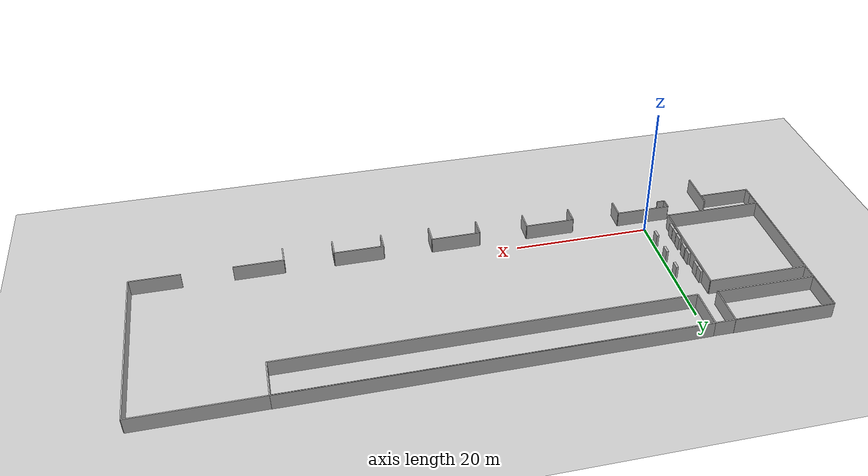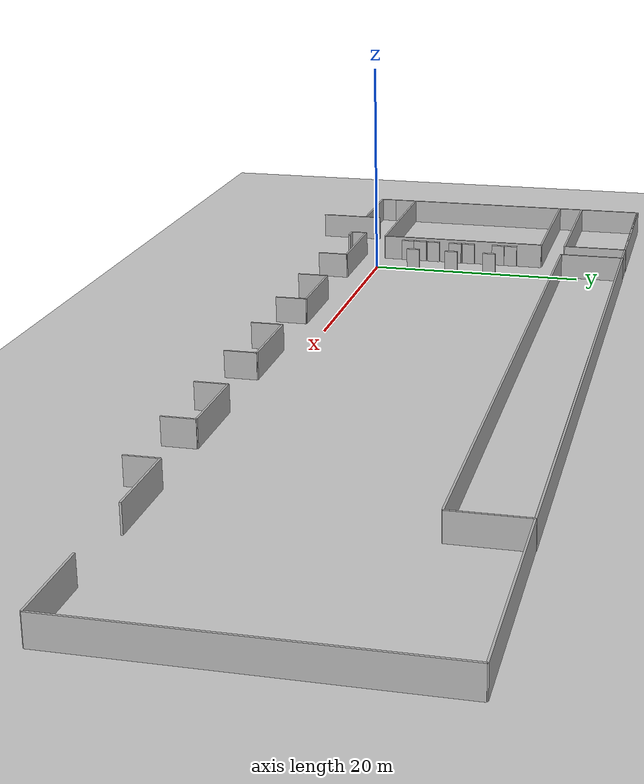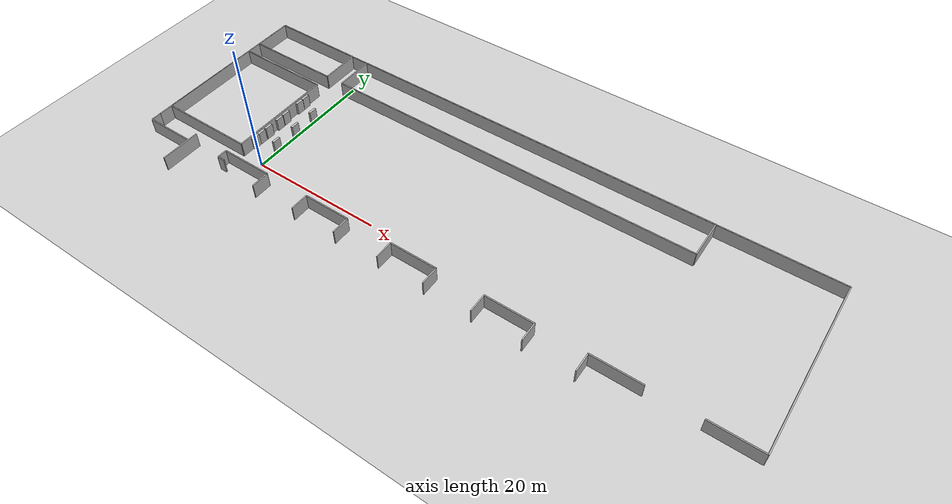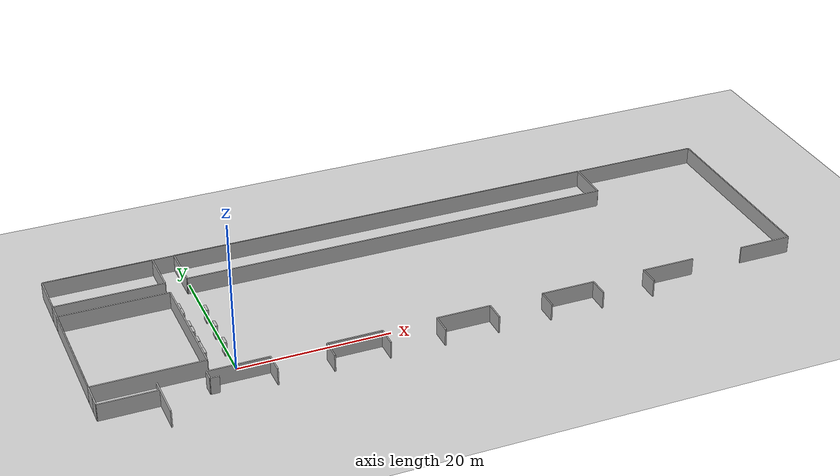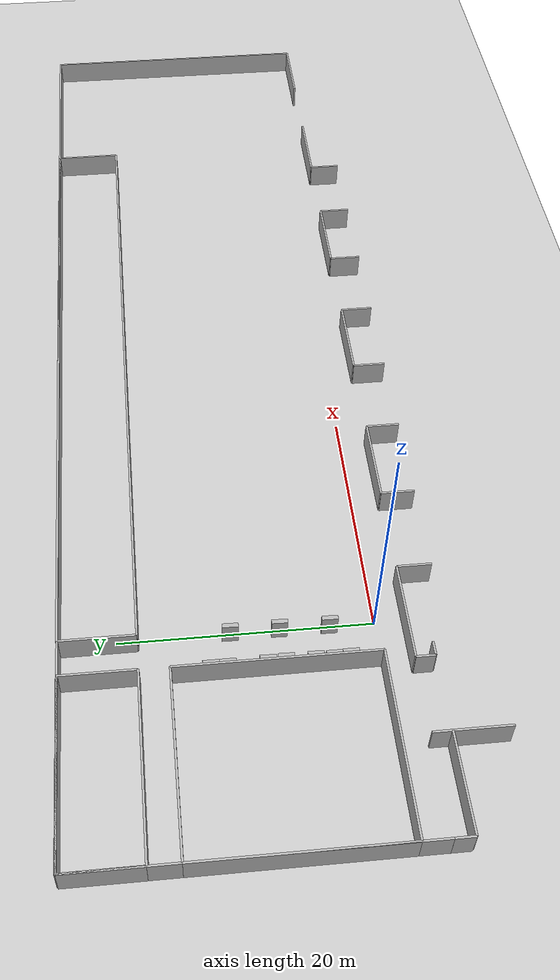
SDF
<sdf version="1.6">
 <world name="default">
  <model name="ground_plane">
   <static>1</static>
   <link name="link">
    <collision name="collision">
     <geometry><plane><normal>0 0 1</normal><size>100 100</size></plane></geometry>
     <surface><friction><ode><mu>100</mu><mu2>50</mu2></ode></friction></surface>
    </collision>
    <visual name="visual">
     <cast_shadows>0</cast_shadows>
     <geometry><plane><normal>0 0 1</normal><size>100 100</size></plane></geometry>
     <material>
      <script><uri>file://media/materials/scripts/gazebo.material</uri><name>Gazebo/Grey</name></script>
     </material>
    </visual>
   </link>
  </model>
  <model name="model_2">
   <pose>-17.962 0 1 0 -0 0</pose>
   <link name="Wall_0">
    <pose>7.219 0 0 0 -0 0</pose>
    <collision name="Wall_0_Collision"><geometry><box><size>14.438 0.169 2.5</size></box></geometry></collision>
    <visual name="Wall_0_Visual"><geometry><box><size>14.438 0.169 2.5</size></box></geometry></visual>
   </link>
   <link name="Wall_1">
    <pose>7.219 16 0 0 -0 0</pose>
    <collision name="Wall_1_Collision"><geometry><box><size>14.438 0.169 2.5</size></box></geometry></collision>
    <visual name="Wall_1_Visual"><geometry><box><size>14.438 0.169 2.5</size></box></geometry></visual>
   </link>
   <link name="Wall_2">
    <pose>0 8 0 0 -0 1.5707</pose>
    <collision name="Wall_2_Collision"><geometry><box><size>16 0.169 2.5</size></box></geometry></collision>
    <visual name="Wall_2_Visual"><geometry><box><size>16 0.169 2.5</size></box></geometry></visual>
   </link>
   <link name="Wall_3">
    <pose>14.438 8 0 0 -0 1.5707</pose>
    <collision name="Wall_3_Collision"><geometry><box><size>16 0.169 2.5</size></box></geometry></collision>
    <visual name="Wall_3_Visual"><geometry><box><size>16 0.169 2.5</size></box></geometry></visual>
   </link>
   <static>1</static>
  </model>
  <model name="model_3">
   <pose>-17.962 18.362 1 0 -0 0</pose>
   <link name="Wall_0">
    <pose>7.219 0 0 0 -0 0</pose>
    <collision name="Wall_0_Collision"><geometry><box><size>14.438 0.169 2.5</size></box></geometry></collision>
    <visual name="Wall_0_Visual"><geometry><box><size>14.438 0.169 2.5</size></box></geometry></visual>
   </link>
   <link name="Wall_1">
    <pose>7.219 6 0 0 -0 0</pose>
    <collision name="Wall_1_Collision"><geometry><box><size>14.438 0.169 2.5</size></box></geometry></collision>
    <visual name="Wall_1_Visual"><geometry><box><size>14.438 0.169 2.5</size></box></geometry></visual>
   </link>
   <link name="Wall_2">
    <pose>0 3 0 0 -0 1.5707</pose>
    <collision name="Wall_2_Collision"><geometry><box><size>6 0.169 2.5</size></box></geometry></collision>
    <visual name="Wall_2_Visual"><geometry><box><size>6 0.169 2.5</size></box></geometry></visual>
   </link>
   <link name="Wall_3">
    <pose>14.438 3 0 0 -0 1.5707</pose>
    <collision name="Wall_3_Collision"><geometry><box><size>6 0.169 2.5</size></box></geometry></collision>
    <visual name="Wall_3_Visual"><geometry><box><size>6 0.169 2.5</size></box></geometry></visual>
   </link>
   <static>1</static>
  </model>
  <model name="model_4">
   <pose>-0.636 18.362 1 0 -0 0</pose>
   <link name="Wall_0">
    <pose>29.306 0 0 0 -0 0</pose>
    <collision name="Wall_0_Collision"><geometry><box><size>58.612 0.169 2.5</size></box></geometry></collision>
    <visual name="Wall_0_Visual"><geometry><box><size>58.612 0.169 2.5</size></box></geometry></visual>
   </link>
   <link name="Wall_1">
    <pose>29.306 6 0 0 -0 0</pose>
    <collision name="Wall_1_Collision"><geometry><box><size>58.612 0.169 2.5</size></box></geometry></collision>
    <visual name="Wall_1_Visual"><geometry><box><size>58.612 0.169 2.5</size></box></geometry></visual>
   </link>
   <link name="Wall_2">
    <pose>0 3 0 0 -0 1.5707</pose>
    <collision name="Wall_2_Collision"><geometry><box><size>6 0.169 2.5</size></box></geometry></collision>
    <visual name="Wall_2_Visual"><geometry><box><size>6 0.169 2.5</size></box></geometry></visual>
   </link>
   <link name="Wall_3">
    <pose>58.612 3 0 0 -0 1.5707</pose>
    <collision name="Wall_3_Collision"><geometry><box><size>6 0.169 2.5</size></box></geometry></collision>
    <visual name="Wall_3_Visual"><geometry><box><size>6 0.169 2.5</size></box></geometry></visual>
   </link>
   <static>1</static>
  </model>
  <model name="model_6">
   <pose>-17.962 -2.202 1 0 -0 0</pose>
   <link name="Wall_0">
    <pose>0 -0.755 0 0 -0 1.5707</pose>
    <collision name="Wall_0_Collision"><geometry><box><size>1.51 0.169 2.5</size></box></geometry></collision>
    <visual name="Wall_0_Visual"><geometry><box><size>1.51 0.169 2.5</size></box></geometry></visual>
   </link>
   <link name="Wall_1">
    <pose>3.809 -1.51 0 0 -0 0</pose>
    <collision name="Wall_1_Collision"><geometry><box><size>7.618 0.169 2.5</size></box></geometry></collision>
    <visual name="Wall_1_Visual"><geometry><box><size>7.618 0.169 2.5</size></box></geometry></visual>
   </link>
   <link name="Wall_2">
    <pose>7.618 -3.005 0 0 -0 1.5707</pose>
    <collision name="Wall_2_Collision"><geometry><box><size>6.01 0.169 2.5</size></box></geometry></collision>
    <visual name="Wall_2_Visual"><geometry><box><size>6.01 0.169 2.5</size></box></geometry></visual>
   </link>
   <link name="Wall_3">
    <pose>13.638 -0.755 0 0 -0 1.5707</pose>
    <collision name="Wall_3_Collision"><geometry><box><size>1.51 0.169 2.5</size></box></geometry></collision>
    <visual name="Wall_3_Visual"><geometry><box><size>1.51 0.169 2.5</size></box></geometry></visual>
   </link>
   <link name="Wall_4">
    <pose>14.214 -1.51 0 0 -0 0</pose>
    <collision name="Wall_4_Collision"><geometry><box><size>1.152 0.169 2.5</size></box></geometry></collision>
    <visual name="Wall_4_Visual"><geometry><box><size>1.152 0.169 2.5</size></box></geometry></visual>
   </link>
   <link name="Wall_5">
    <pose>17.619 0 0 0 -0 0</pose>
    <collision name="Wall_5_Collision"><geometry><box><size>7.962 0.169 2.5</size></box></geometry></collision>
    <visual name="Wall_5_Visual"><geometry><box><size>7.962 0.169 2.5</size></box></geometry></visual>
   </link>
   <link name="Wall_6">
    <pose>21.6 -1.39375 0 0 -0 1.5707</pose>
    <collision name="Wall_6_Collision"><geometry><box><size>2.7875 0.169 2.5</size></box></geometry></collision>
    <visual name="Wall_6_Visual"><geometry><box><size>2.7875 0.169 2.5</size></box></geometry></visual>
   </link>
   <link name="Wall_7">
    <pose>28.8 -1.39375 0 0 -0 1.5707</pose>
    <collision name="Wall_7_Collision"><geometry><box><size>2.7875 0.169 2.5</size></box></geometry></collision>
    <visual name="Wall_7_Visual"><geometry><box><size>2.7875 0.169 2.5</size></box></geometry></visual>
   </link>
   <link name="Wall_8">
    <pose>32.4 0 0 0 -0 0</pose>
    <collision name="Wall_8_Collision"><geometry><box><size>7.2 0.169 2.5</size></box></geometry></collision>
    <visual name="Wall_8_Visual"><geometry><box><size>7.2 0.169 2.5</size></box></geometry></visual>
   </link>
   <link name="Wall_9">
    <pose>36 -1.39375 0 0 -0 1.5707</pose>
    <collision name="Wall_9_Collision"><geometry><box><size>2.7875 0.169 2.5</size></box></geometry></collision>
    <visual name="Wall_9_Visual"><geometry><box><size>2.7875 0.169 2.5</size></box></geometry></visual>
   </link>
   <link name="Wall_10">
    <pose>43.2 -1.39375 0 0 -0 1.5707</pose>
    <collision name="Wall_10_Collision"><geometry><box><size>2.7875 0.169 2.5</size></box></geometry></collision>
    <visual name="Wall_10_Visual"><geometry><box><size>2.7875 0.169 2.5</size></box></geometry></visual>
   </link>
   <link name="Wall_11">
    <pose>46.8 0 0 0 -0 0</pose>
    <collision name="Wall_11_Collision"><geometry><box><size>7.2 0.169 2.5</size></box></geometry></collision>
    <visual name="Wall_11_Visual"><geometry><box><size>7.2 0.169 2.5</size></box></geometry></visual>
   </link>
   <link name="Wall_12">
    <pose>50.4 -1.39375 0 0 -0 1.5707</pose>
    <collision name="Wall_12_Collision"><geometry><box><size>2.7875 0.169 2.5</size></box></geometry></collision>
    <visual name="Wall_12_Visual"><geometry><box><size>2.7875 0.169 2.5</size></box></geometry></visual>
   </link>
   <link name="Wall_13">
    <pose>57.6 -1.39375 0 0 -0 1.5707</pose>
    <collision name="Wall_13_Collision"><geometry><box><size>2.7875 0.169 2.5</size></box></geometry></collision>
    <visual name="Wall_13_Visual"><geometry><box><size>2.7875 0.169 2.5</size></box></geometry></visual>
   </link>
   <link name="Wall_14">
    <pose>61.2 0 0 0 -0 0</pose>
    <collision name="Wall_14_Collision"><geometry><box><size>7.2 0.169 2.5</size></box></geometry></collision>
    <visual name="Wall_14_Visual"><geometry><box><size>7.2 0.169 2.5</size></box></geometry></visual>
   </link>
   <link name="Wall_15">
    <pose>64.8 -1.39375 0 0 -0 1.5707</pose>
    <collision name="Wall_15_Collision"><geometry><box><size>2.7875 0.169 2.5</size></box></geometry></collision>
    <visual name="Wall_15_Visual"><geometry><box><size>2.7875 0.169 2.5</size></box></geometry></visual>
   </link>
   <link name="Wall_16">
    <pose>72 -1.39375 0 0 -0 1.5707</pose>
    <collision name="Wall_16_Collision"><geometry><box><size>2.7875 0.169 2.5</size></box></geometry></collision>
    <visual name="Wall_16_Visual"><geometry><box><size>2.7875 0.169 2.5</size></box></geometry></visual>
   </link>
   <link name="Wall_17">
    <pose>75.6 0 0 0 -0 0</pose>
    <collision name="Wall_17_Collision"><geometry><box><size>7.2 0.169 2.5</size></box></geometry></collision>
    <visual name="Wall_17_Visual"><geometry><box><size>7.2 0.169 2.5</size></box></geometry></visual>
   </link>
   <link name="Wall_18">
    <pose>90 0 0 0 -0 0</pose>
    <collision name="Wall_18_Collision"><geometry><box><size>7.2 0.169 2.5</size></box></geometry></collision>
    <visual name="Wall_18_Visual"><geometry><box><size>7.2 0.169 2.5</size></box></geometry></visual>
   </link>
   <static>1</static>
  </model>
  <model name="model_7">
   <pose>-17.962 -2.202 1 0 -0 0</pose>
   <link name="Wall_0">
    <pose>0 13.27 0 0 -0 1.5707</pose>
    <collision name="Wall_0_Collision"><geometry><box><size>26.54 0.16 2.5</size></box></geometry></collision>
    <visual name="Wall_0_Visual"><geometry><box><size>26.54 0.16 2.5</size></box></geometry></visual>
   </link>
   <link name="Wall_1">
    <pose>46.8 26.54 0 0 -0 0</pose>
    <collision name="Wall_1_Collision"><geometry><box><size>93.6 0.16 2.5</size></box></geometry></collision>
    <visual name="Wall_1_Visual"><geometry><box><size>93.6 0.16 2.5</size></box></geometry></visual>
   </link>
   <link name="Wall_3">
    <pose>93.6 13.27 0 0 -0 1.5707</pose>
    <collision name="Wall_3_Collision"><geometry><box><size>26.54 0.16 2.5</size></box></geometry></collision>
    <visual name="Wall_3_Visual"><geometry><box><size>26.54 0.16 2.5</size></box></geometry></visual>
   </link>
   <static>1</static>
  </model>
  <model name="unit_box_clone_1_clone_56_clone_clone_clone_1">
   <pose>-3.26398 12.9616 0.999998 0 3e-06 -1.57084</pose>
   <link name="link">
    <inertial>
     <mass>1</mass>
     <inertia>
      <ixx>0.166667</ixx>
      <ixy>0</ixy>
      <ixz>0</ixz>
      <iyy>0.166667</iyy>
      <iyz>0</iyz>
      <izz>0.166667</izz>
     </inertia>
    </inertial>
    <collision name="collision"><geometry><box><size>1.25 0.35 2</size></box></geometry></collision>
    <visual name="visual"><geometry><box><size>1.25 0.35 2</size></box></geometry></visual>
   </link>
  </model>
  <model name="unit_box_clone_1_clone_56_clone_clone_clone_3">
   <pose>-0.302966 11.2792 0.999998 0 -4e-06 -1.59085</pose>
   <link name="link">
    <inertial>
     <mass>1</mass>
     <inertia>
      <ixx>0.166667</ixx>
      <ixy>0</ixy>
      <ixz>0</ixz>
      <iyy>0.166667</iyy>
      <iyz>0</iyz>
      <izz>0.166667</izz>
     </inertia>
    </inertial>
    <collision name="collision"><geometry><box><size>1.25 0.35 2</size></box></geometry></collision>
    <visual name="visual"><geometry><box><size>1.25 0.35 2</size></box></geometry></visual>
   </link>
  </model>
  <model name="unit_box_clone_1_clone_56_clone_clone_clone_4">
   <pose>-3.26411 11.6884 1 0 0 -1.57092</pose>
   <link name="link">
    <inertial>
     <mass>1</mass>
     <inertia>
      <ixx>0.166667</ixx>
      <ixy>0</ixy>
      <ixz>0</ixz>
      <iyy>0.166667</iyy>
      <iyz>0</iyz>
      <izz>0.166667</izz>
     </inertia>
    </inertial>
    <collision name="collision"><geometry><box><size>1.25 0.35 2</size></box></geometry></collision>
    <visual name="visual"><geometry><box><size>1.25 0.35 2</size></box></geometry></visual>
   </link>
  </model>
  <model name="unit_box_clone_1_clone_56_clone_clone_clone_6">
   <pose>-0.295919 7.48399 1 0 0 -1.59459</pose>
   <link name="link">
    <inertial>
     <mass>1</mass>
     <inertia>
      <ixx>0.166667</ixx>
      <ixy>0</ixy>
      <ixz>0</ixz>
      <iyy>0.166667</iyy>
      <iyz>0</iyz>
      <izz>0.166667</izz>
     </inertia>
    </inertial>
    <collision name="collision"><geometry><box><size>1.25 0.35 2</size></box></geometry></collision>
    <visual name="visual"><geometry><box><size>1.25 0.35 2</size></box></geometry></visual>
   </link>
  </model>
  <model name="unit_box_clone_1_clone_56_clone_clone_clone_7">
   <pose>-3.21669 8.68153 0.999996 0 -2e-06 -1.59458</pose>
   <link name="link">
    <inertial>
     <mass>1</mass>
     <inertia>
      <ixx>0.166667</ixx>
      <ixy>0</ixy>
      <ixz>0</ixz>
      <iyy>0.166667</iyy>
      <iyz>0</iyz>
      <izz>0.166667</izz>
     </inertia>
    </inertial>
    <collision name="collision"><geometry><box><size>1.25 0.35 2</size></box></geometry></collision>
    <visual name="visual"><geometry><box><size>1.25 0.35 2</size></box></geometry></visual>
   </link>
  </model>
  <model name="unit_box_clone_1_clone_56_clone_clone_clone_8">
   <pose>-3.19755 7.31238 1 0 0 -1.59457</pose>
   <link name="link">
    <inertial>
     <mass>1</mass>
     <inertia>
      <ixx>0.166667</ixx>
      <ixy>0</ixy>
      <ixz>0</ixz>
      <iyy>0.166667</iyy>
      <iyz>0</iyz>
      <izz>0.166667</izz>
     </inertia>
    </inertial>
    <collision name="collision"><geometry><box><size>1.25 0.35 2</size></box></geometry></collision>
    <visual name="visual"><geometry><box><size>1.25 0.35 2</size></box></geometry></visual>
   </link>
  </model>
  <model name="unit_box_clone_1_clone_56_clone_clone_clone_9">
   <pose>-3.21999 5.08275 0.999997 1e-06 5e-06 -1.59456</pose>
   <link name="link">
    <inertial>
     <mass>1</mass>
     <inertia>
      <ixx>0.166667</ixx>
      <ixy>0</ixy>
      <ixz>0</ixz>
      <iyy>0.166667</iyy>
      <iyz>0</iyz>
      <izz>0.166667</izz>
     </inertia>
    </inertial>
    <collision name="collision"><geometry><box><size>1.25 0.35 2</size></box></geometry></collision>
    <visual name="visual"><geometry><box><size>1.25 0.35 2</size></box></geometry></visual>
   </link>
  </model>
  <model name="unit_box_clone_1_clone_56_clone_clone_clone_11">
   <pose>-0.318674 3.62644 0.999994 0 -2e-06 -1.58771</pose>
   <link name="link">
    <inertial>
     <mass>1</mass>
     <inertia>
      <ixx>0.166667</ixx>
      <ixy>0</ixy>
      <ixz>0</ixz>
      <iyy>0.166667</iyy>
      <iyz>0</iyz>
      <izz>0.166667</izz>
     </inertia>
    </inertial>
    <collision name="collision"><geometry><box><size>1.25 0.35 2</size></box></geometry></collision>
    <visual name="visual"><geometry><box><size>1.25 0.35 2</size></box></geometry></visual>
   </link>
  </model>
  <model name="unit_box_clone_1_clone_56_clone_clone_clone_12">
   <pose>-3.26345 3.69096 0.999995 0 -2e-06 -1.57322</pose>
   <link name="link">
    <inertial>
     <mass>1</mass>
     <inertia>
      <ixx>0.166667</ixx>
      <ixy>0</ixy>
      <ixz>0</ixz>
      <iyy>0.166667</iyy>
      <iyz>0</iyz>
      <izz>0.166667</izz>
     </inertia>
    </inertial>
    <collision name="collision"><geometry><box><size>1.25 0.35 2</size></box></geometry></collision>
    <visual name="visual"><geometry><box><size>1.25 0.35 2</size></box></geometry></visual>
   </link>
  </model>
  <model name="unit_box_clone_1_clone_56_clone_clone_clone_13">
   <pose>-3.23594 2.43901 1 0 0 -1.58179</pose>
   <link name="link">
    <inertial>
     <mass>1</mass>
     <inertia>
      <ixx>0.166667</ixx>
      <ixy>0</ixy>
      <ixz>0</ixz>
      <iyy>0.166667</iyy>
      <iyz>0</iyz>
      <izz>0.166667</izz>
     </inertia>
    </inertial>
    <collision name="collision"><geometry><box><size>1.25 0.35 2</size></box></geometry></collision>
    <visual name="visual"><geometry><box><size>1.25 0.35 2</size></box></geometry></visual>
   </link>
  </model>
 </world>
</sdf>
